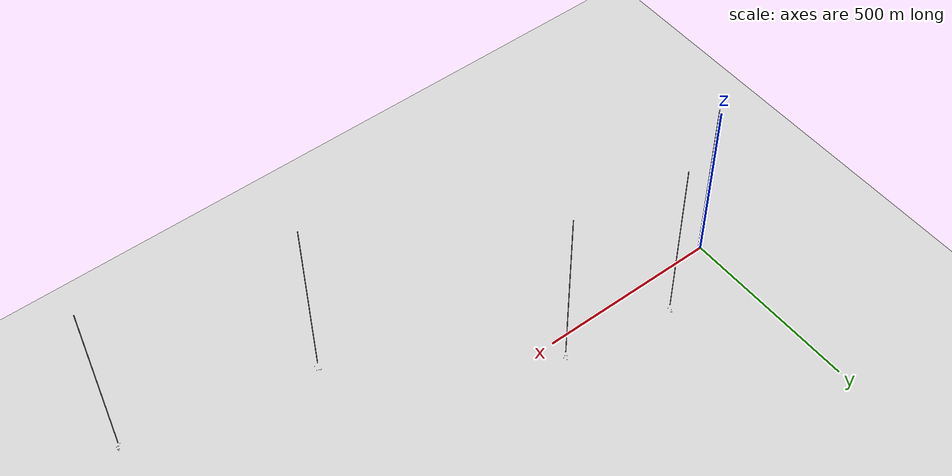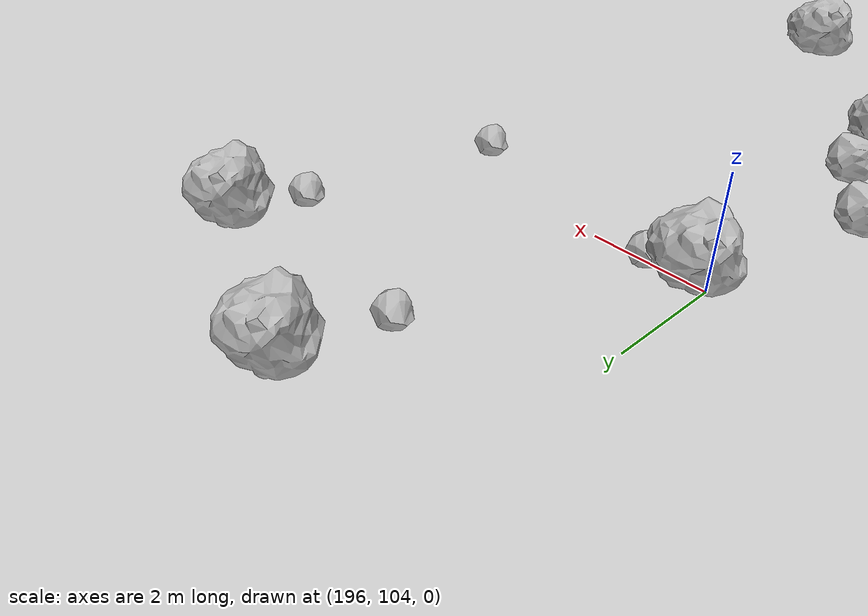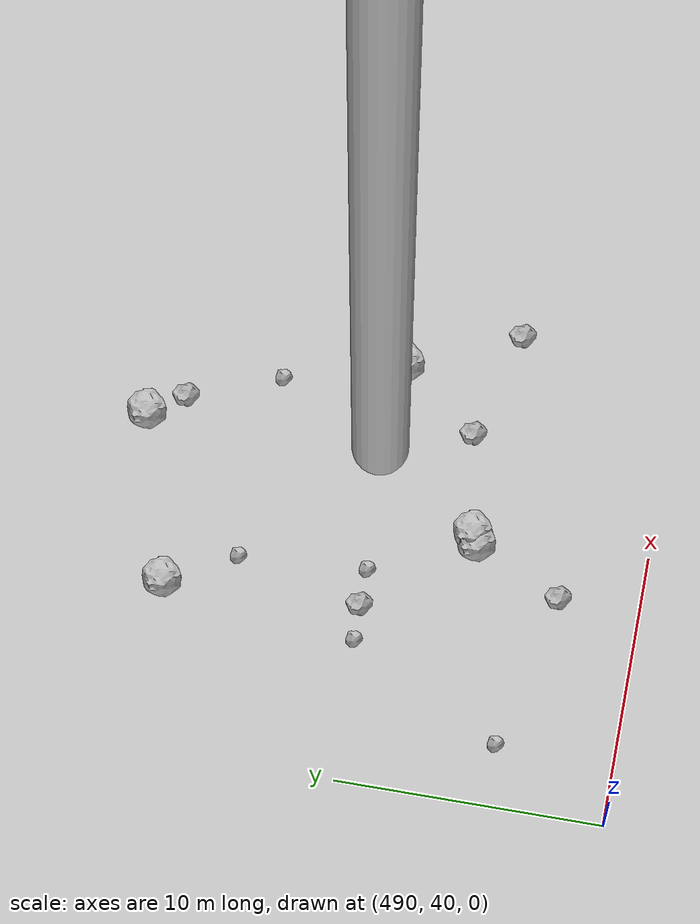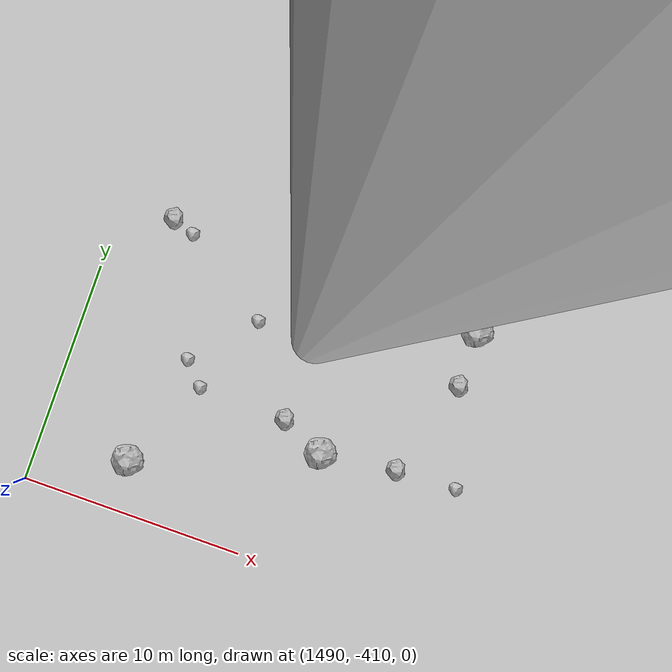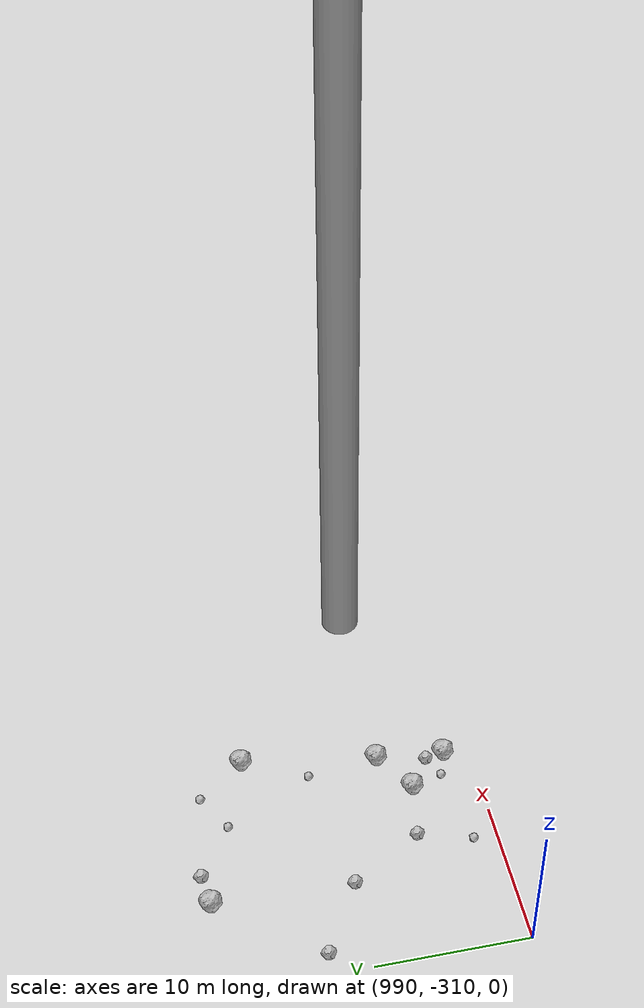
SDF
<?xml version="1.0" ?>
<sdf version="1.6">
  <world name="default">

    <include>
      <uri>model://custom_ground</uri>
    </include>

    <include>
      <uri>model://sun</uri>
    </include>

    <spherical_coordinates>
      <surface_model>EARTH_WGS84</surface_model>
      <latitude_deg>38.161479</latitude_deg>
      <longitude_deg>-122.454630</longitude_deg>
      <elevation>488.0</elevation>
      <heading_deg>90</heading_deg>
    </spherical_coordinates>

    <model name="rock1_0_0">
      <include>
        <uri>model://rock1</uri>
        <pose>2.89260541241227 2.4946545681420513 0.5 0 0 0</pose>
      </include>
    </model>
    <model name="rock1_0_1">
      <include>
        <uri>model://rock1</uri>
        <pose>19.657605555258375 -0.6411395903463752 0.5 0 0 0</pose>
      </include>
    </model>
    <model name="rock1_0_2">
      <include>
        <uri>model://rock1</uri>
        <pose>13.33405202655711 1.217699446266419 0.5 0 0 0</pose>
      </include>
    </model>
    <model name="rock1_0_3">
      <include>
        <uri>model://rock1</uri>
        <pose>3.7763774605828004 1.9727949342913416 0.5 0 0 0</pose>
      </include>
    </model>
    <model name="rock1_0_4">
      <include>
        <uri>model://rock1</uri>
        <pose>15.302445266441797 6.542702488938094 0.5 0 0 0</pose>
      </include>
    </model>
    <model name="rock2_0_0">
      <include>
        <uri>model://rock2</uri>
        <pose>7.462534296136951 -6.646130747129195 0.3 0 0 0</pose>
      </include>
    </model>
    <model name="rock2_0_1">
      <include>
        <uri>model://rock2</uri>
        <pose>14.36580051745902 -0.6292678611635516 0.3 0 0 0</pose>
      </include>
    </model>
    <model name="rock2_0_2">
      <include>
        <uri>model://rock2</uri>
        <pose>14.123309361863816 4.691918736941368 0.3 0 0 0</pose>
      </include>
    </model>
    <model name="rock2_0_3">
      <include>
        <uri>model://rock2</uri>
        <pose>18.472308625545963 1.15379273880189 0.3 0 0 0</pose>
      </include>
    </model>
    <model name="rock2_0_4">
      <include>
        <uri>model://rock2</uri>
        <pose>19.310527991735352 -1.1879398932654617 0.3 0 0 0</pose>
      </include>
    </model>
    <model name="rock3_0_0">
      <include>
        <uri>model://rock3</uri>
        <pose>10.49077239639622 3.251303889821063 0.2 0 0 0</pose>
      </include>
    </model>
    <model name="rock3_0_1">
      <include>
        <uri>model://rock3</uri>
        <pose>4.718044592435446 -1.902851308140459 0.2 0 0 0</pose>
      </include>
    </model>
    <model name="rock3_0_2">
      <include>
        <uri>model://rock3</uri>
        <pose>15.24704386428214 6.397069544615061 0.2 0 0 0</pose>
      </include>
    </model>
    <model name="rock3_0_3">
      <include>
        <uri>model://rock3</uri>
        <pose>14.924296111696421 -4.855528104915637 0.2 0 0 0</pose>
      </include>
    </model>
    <model name="rock3_0_4">
      <include>
        <uri>model://rock3</uri>
        <pose>2.920929085804469 -4.636489216280433 0.2 0 0 0</pose>
      </include>
    </model>
    <model name="rock1_1_0">
      <include>
        <uri>model://rock1</uri>
        <pose>196.410199030822 103.78395588369364 0.5 0 0 0</pose>
      </include>
    </model>
    <model name="rock1_1_1">
      <include>
        <uri>model://rock1</uri>
        <pose>199.16754013081615 109.44482447978942 0.5 0 0 0</pose>
      </include>
    </model>
    <model name="rock1_1_2">
      <include>
        <uri>model://rock1</uri>
        <pose>199.60964398713503 93.6705273242485 0.5 0 0 0</pose>
      </include>
    </model>
    <model name="rock1_1_3">
      <include>
        <uri>model://rock1</uri>
        <pose>202.57312412103278 107.88943520149196 0.5 0 0 0</pose>
      </include>
    </model>
    <model name="rock1_1_4">
      <include>
        <uri>model://rock1</uri>
        <pose>196.32643744535446 97.50055092682139 0.5 0 0 0</pose>
      </include>
    </model>
    <model name="rock2_1_0">
      <include>
        <uri>model://rock2</uri>
        <pose>207.45007818952297 95.26261406285035 0.3 0 0 0</pose>
      </include>
    </model>
    <model name="rock2_1_1">
      <include>
        <uri>model://rock2</uri>
        <pose>192.98566948720372 101.34380037998089 0.3 0 0 0</pose>
      </include>
    </model>
    <model name="rock2_1_2">
      <include>
        <uri>model://rock2</uri>
        <pose>196.84827386704484 94.2402271760127 0.3 0 0 0</pose>
      </include>
    </model>
    <model name="rock2_1_3">
      <include>
        <uri>model://rock2</uri>
        <pose>195.3566487966259 100.61086526166476 0.3 0 0 0</pose>
      </include>
    </model>
    <model name="rock2_1_4">
      <include>
        <uri>model://rock2</uri>
        <pose>196.2612137395364 99.07601254209176 0.3 0 0 0</pose>
      </include>
    </model>
    <model name="rock3_1_0">
      <include>
        <uri>model://rock3</uri>
        <pose>192.1362628941362 98.50335873108598 0.2 0 0 0</pose>
      </include>
    </model>
    <model name="rock3_1_1">
      <include>
        <uri>model://rock3</uri>
        <pose>201.1273461425231 103.05780315184737 0.2 0 0 0</pose>
      </include>
    </model>
    <model name="rock3_1_2">
      <include>
        <uri>model://rock3</uri>
        <pose>197.0805637153606 103.91885349368059 0.2 0 0 0</pose>
      </include>
    </model>
    <model name="rock3_1_3">
      <include>
        <uri>model://rock3</uri>
        <pose>198.54377940881574 107.75372663830035 0.2 0 0 0</pose>
      </include>
    </model>
    <model name="rock3_1_4">
      <include>
        <uri>model://rock3</uri>
        <pose>201.97530441134236 106.6797799120489 0.2 0 0 0</pose>
      </include>
    </model>
    <model name="rock1_2_0">
      <include>
        <uri>model://rock1</uri>
        <pose>505.63886468845834 50.02712931733318 0.5 0 0 0</pose>
      </include>
    </model>
    <model name="rock1_2_1">
      <include>
        <uri>model://rock1</uri>
        <pose>499.5457221468609 46.34049370036692 0.5 0 0 0</pose>
      </include>
    </model>
    <model name="rock1_2_2">
      <include>
        <uri>model://rock1</uri>
        <pose>499.92705544563654 46.530568517945284 0.5 0 0 0</pose>
      </include>
    </model>
    <model name="rock1_2_3">
      <include>
        <uri>model://rock1</uri>
        <pose>502.34299759528005 59.069752213211935 0.5 0 0 0</pose>
      </include>
    </model>
    <model name="rock1_2_4">
      <include>
        <uri>model://rock1</uri>
        <pose>496.3242314504586 57.471613068752184 0.5 0 0 0</pose>
      </include>
    </model>
    <model name="rock2_2_0">
      <include>
        <uri>model://rock2</uri>
        <pose>496.5668604891698 50.18682465521181 0.3 0 0 0</pose>
      </include>
    </model>
    <model name="rock2_2_1">
      <include>
        <uri>model://rock2</uri>
        <pose>498.008485614543 43.04316859646106 0.3 0 0 0</pose>
      </include>
    </model>
    <model name="rock2_2_2">
      <include>
        <uri>model://rock2</uri>
        <pose>507.32569376290496 45.92609705891655 0.3 0 0 0</pose>
      </include>
    </model>
    <model name="rock2_2_3">
      <include>
        <uri>model://rock2</uri>
        <pose>503.1060778737948 57.7586161595869 0.3 0 0 0</pose>
      </include>
    </model>
    <model name="rock2_2_4">
      <include>
        <uri>model://rock2</uri>
        <pose>503.473249848988 47.11853634830227 0.3 0 0 0</pose>
      </include>
    </model>
    <model name="rock3_2_0">
      <include>
        <uri>model://rock3</uri>
        <pose>497.86338331226835 50.098599018927715 0.2 0 0 0</pose>
      </include>
    </model>
    <model name="rock3_2_1">
      <include>
        <uri>model://rock3</uri>
        <pose>504.32207141504256 54.31487484954413 0.2 0 0 0</pose>
      </include>
    </model>
    <model name="rock3_2_2">
      <include>
        <uri>model://rock3</uri>
        <pose>497.56865366849047 54.83900261891051 0.2 0 0 0</pose>
      </include>
    </model>
    <model name="rock3_2_3">
      <include>
        <uri>model://rock3</uri>
        <pose>492.31191746585534 44.38889423165009 0.2 0 0 0</pose>
      </include>
    </model>
    <model name="rock3_2_4">
      <include>
        <uri>model://rock3</uri>
        <pose>495.2414680363568 50.14026038338798 0.2 0 0 0</pose>
      </include>
    </model>
    <model name="rock1_3_0">
      <include>
        <uri>model://rock1</uri>
        <pose>996.5331461867233 -290.97761517681255 0.5 0 0 0</pose>
      </include>
    </model>
    <model name="rock1_3_1">
      <include>
        <uri>model://rock1</uri>
        <pose>1005.7593548734989 -303.6528998186195 0.5 0 0 0</pose>
      </include>
    </model>
    <model name="rock1_3_2">
      <include>
        <uri>model://rock1</uri>
        <pose>1005.2674659673213 -308.16963374897995 0.5 0 0 0</pose>
      </include>
    </model>
    <model name="rock1_3_3">
      <include>
        <uri>model://rock1</uri>
        <pose>1007.2321639952659 -294.6546077293912 0.5 0 0 0</pose>
      </include>
    </model>
    <model name="rock1_3_4">
      <include>
        <uri>model://rock1</uri>
        <pose>1002.878828171247 -305.47209598007305 0.5 0 0 0</pose>
      </include>
    </model>
    <model name="rock2_3_0">
      <include>
        <uri>model://rock2</uri>
        <pose>998.5725133287046 -290.6930497824316 0.3 0 0 0</pose>
      </include>
    </model>
    <model name="rock2_3_1">
      <include>
        <uri>model://rock2</uri>
        <pose>998.9516261776533 -304.8629581464774 0.3 0 0 0</pose>
      </include>
    </model>
    <model name="rock2_3_2">
      <include>
        <uri>model://rock2</uri>
        <pose>996.1079692161777 -300.1272022520416 0.3 0 0 0</pose>
      </include>
    </model>
    <model name="rock2_3_3">
      <include>
        <uri>model://rock2</uri>
        <pose>1004.9104426415936 -306.91001587110514 0.3 0 0 0</pose>
      </include>
    </model>
    <model name="rock2_3_4">
      <include>
        <uri>model://rock2</uri>
        <pose>991.431521142426 -297.46281885650166 0.3 0 0 0</pose>
      </include>
    </model>
    <model name="rock3_3_0">
      <include>
        <uri>model://rock3</uri>
        <pose>997.9162229636133 -308.40685471162084 0.2 0 0 0</pose>
      </include>
    </model>
    <model name="rock3_3_1">
      <include>
        <uri>model://rock3</uri>
        <pose>1003.4086609479396 -307.63282867490045 0.2 0 0 0</pose>
      </include>
    </model>
    <model name="rock3_3_2">
      <include>
        <uri>model://rock3</uri>
        <pose>1004.6669290698022 -291.55296554863185 0.2 0 0 0</pose>
      </include>
    </model>
    <model name="rock3_3_3">
      <include>
        <uri>model://rock3</uri>
        <pose>1002.0752384680592 -293.0014733231921 0.2 0 0 0</pose>
      </include>
    </model>
    <model name="rock3_3_4">
      <include>
        <uri>model://rock3</uri>
        <pose>1005.072771652649 -298.92554476764326 0.2 0 0 0</pose>
      </include>
    </model>
    <model name="rock1_4_0">
      <include>
        <uri>model://rock1</uri>
        <pose>1501.9718800517635 -404.5577451655503 0.5 0 0 0</pose>
      </include>
    </model>
    <model name="rock1_4_1">
      <include>
        <uri>model://rock1</uri>
        <pose>1506.7075379616501 -397.142366961048 0.5 0 0 0</pose>
      </include>
    </model>
    <model name="rock1_4_2">
      <include>
        <uri>model://rock1</uri>
        <pose>1505.705710288181 -396.0159890482087 0.5 0 0 0</pose>
      </include>
    </model>
    <model name="rock1_4_3">
      <include>
        <uri>model://rock1</uri>
        <pose>1494.025131911964 -407.71459109111555 0.5 0 0 0</pose>
      </include>
    </model>
    <model name="rock1_4_4">
      <include>
        <uri>model://rock1</uri>
        <pose>1502.230579990056 -395.95125588955847 0.5 0 0 0</pose>
      </include>
    </model>
    <model name="rock2_4_0">
      <include>
        <uri>model://rock2</uri>
        <pose>1492.3430705803194 -396.9108884418526 0.3 0 0 0</pose>
      </include>
    </model>
    <model name="rock2_4_1">
      <include>
        <uri>model://rock2</uri>
        <pose>1506.7288845104058 -399.67481112981585 0.3 0 0 0</pose>
      </include>
    </model>
    <model name="rock2_4_2">
      <include>
        <uri>model://rock2</uri>
        <pose>1499.9620247883813 -403.6616808521316 0.3 0 0 0</pose>
      </include>
    </model>
    <model name="rock2_4_3">
      <include>
        <uri>model://rock2</uri>
        <pose>1505.7907178966893 -392.0557178748008 0.3 0 0 0</pose>
      </include>
    </model>
    <model name="rock2_4_4">
      <include>
        <uri>model://rock2</uri>
        <pose>1505.3549597275162 -404.1192127603404 0.3 0 0 0</pose>
      </include>
    </model>
    <model name="rock3_4_0">
      <include>
        <uri>model://rock3</uri>
        <pose>1508.125567746941 -404.0638737998383 0.2 0 0 0</pose>
      </include>
    </model>
    <model name="rock3_4_1">
      <include>
        <uri>model://rock3</uri>
        <pose>1494.9992835884566 -402.6234678796496 0.2 0 0 0</pose>
      </include>
    </model>
    <model name="rock3_4_2">
      <include>
        <uri>model://rock3</uri>
        <pose>1497.3894367769988 -399.98160564708274 0.2 0 0 0</pose>
      </include>
    </model>
    <model name="rock3_4_3">
      <include>
        <uri>model://rock3</uri>
        <pose>1493.3534134338938 -397.31651365069564 0.2 0 0 0</pose>
      </include>
    </model>
    <model name="rock3_4_4">
      <include>
        <uri>model://rock3</uri>
        <pose>1495.9273148966663 -403.6147358542447 0.2 0 0 0</pose>
      </include>
    </model>

    <model name="cylinder_1">
      <static>true</static>
      <link name="link">
        <visual name="visual">
          <geometry>
            <cylinder>
              <radius>1</radius>
              <length>500</length>
            </cylinder>
          </geometry>
        </visual>
      </link>
      <pose>10 0 270 0 0 0</pose>
    </model>

    <model name="cylinder_2">
      <static>true</static>
      <link name="link">
        <visual name="visual">
          <geometry>
            <cylinder>
              <radius>1</radius>
              <length>500</length>
            </cylinder>
          </geometry>
        </visual>
      </link>
      <pose>200 100 270 0 0 0</pose>
    </model>

    <model name="cylinder_3">
      <static>true</static>
      <link name="link">
        <visual name="visual">
          <geometry>
            <cylinder>
              <radius>1</radius>
              <length>500</length>
            </cylinder>
          </geometry>
        </visual>
      </link>
      <pose>500 50 270 0 0 0</pose>
    </model>

    <model name="cylinder_4">
      <static>true</static>
      <link name="link">
        <visual name="visual">
          <geometry>
            <cylinder>
              <radius>1</radius>
              <length>500</length>
            </cylinder>
          </geometry>
        </visual>
      </link>
      <pose>1000 -300 270 0 0 0</pose>
    </model>

    <model name="cylinder_5">
      <static>true</static>
      <link name="link">
        <visual name="visual">
          <geometry>
            <cylinder>
              <radius>1</radius>
              <length>500</length>
            </cylinder>
          </geometry>
        </visual>
      </link>
      <pose>1500 -400 270 0 0 0</pose>
    </model>

  </world>
</sdf>

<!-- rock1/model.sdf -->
<sdf version="1.6">
  <model name="rock1">
    <static>true</static> <!-- Set to true if the model should not move -->
    <pose>0 0 0 0 0 0</pose>

    <!--z offset is 0.5 for full scale-->

    <link name="link">
      <collision name="rock1_collision">
        <geometry>
          <mesh>
            <uri>model://meshes/rock1.dae</uri>
          </mesh>
        </geometry>
      </collision>
      <visual name="rock1_visual">
        <geometry>
          <mesh>
            <uri>model://meshes/rock1.dae</uri>
          </mesh>
        </geometry>
        <material>
          <script>
            <uri>model://materials/scripts/sand_pebbles.material</uri>
            <name>custom_ground/Image</name>
          </script>
        </material>
      </visual>
    </link>
  </model>
</sdf>

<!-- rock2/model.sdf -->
<sdf version="1.6">
  <model name="rock2">
    <static>true</static> <!-- Set to true if the model should not move -->
    <pose>0 0 0 0 0 0</pose>

    <!--z offset is 0.3 for full scale-->

    <link name="link">
      <collision name="rock2_collision">
        <geometry>
          <mesh>
            <uri>model://meshes/rock2.dae</uri>
          </mesh>
        </geometry>
      </collision>
      <visual name="rock2_visual">
        <geometry>
          <mesh>
            <uri>model://meshes/rock2.dae</uri>
          </mesh>
        </geometry>
        <material>
          <script>
            <uri>model://materials/scripts/sand_pebbles.material</uri>
            <name>custom_ground/Image</name>
          </script>
        </material>
      </visual>
    </link>
  </model>
</sdf>

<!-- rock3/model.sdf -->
<sdf version="1.6">
  <model name="rock3">
    <static>true</static> <!-- Set to true if the model should not move -->
    <pose>0 0 0 0 0 0</pose>

    <!--z offset is 0.2 for full scale-->

    <link name="link">
      <collision name="rock3_collision">
        <geometry>
          <mesh>
            <uri>model://meshes/rock3.dae</uri>
          </mesh>
        </geometry>
      </collision>
      <visual name="rock3_visual">
        <geometry>
          <mesh>
            <uri>model://meshes/rock3.dae</uri>
          </mesh>
        </geometry>
        <material>
          <script>
            <uri>model://materials/scripts/sand_pebbles.material</uri>
            <name>custom_ground/Image</name>
          </script>
        </material>
      </visual>
    </link>
  </model>
</sdf>

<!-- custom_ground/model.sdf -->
<sdf version="1.6">
  <model name="custom_ground">
    <static>true</static> <!-- Ground is static and immovable -->
    <link name="ground_link">
      <pose>240 0 0 0 0 0</pose> <!-- Position and orientation relative to the world -->
      <!-- Visual Representation -->
      <visual name="ground_visual">
        <geometry>
          <plane>
            <normal>0 0 1</normal> <!-- Upward facing plane -->
            <size>500 500</size> <!-- Size of the plane -->
          </plane>
        </geometry>
        <material>
          <script>
            <uri>model://materials/scripts/sand_pebbles.material</uri>
            <name>custom_ground/Image</name>
          </script>
        </material>
      </visual>

      <!-- Collision Representation -->
      <collision name="ground_collision">
        <geometry>
          <plane>
            <normal>0 0 1</normal>
            <size>100 100</size>
          </plane>
        </geometry>
      </collision>

    </link>
  </model>
</sdf>
